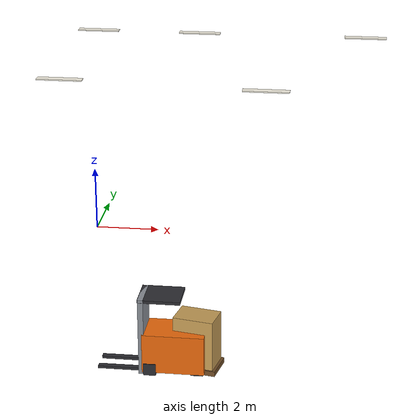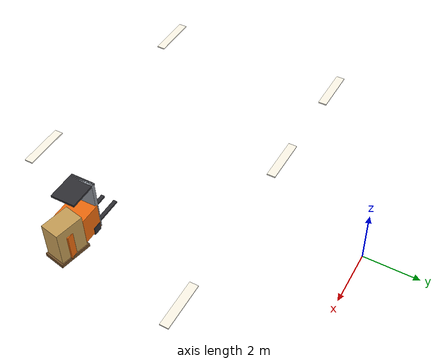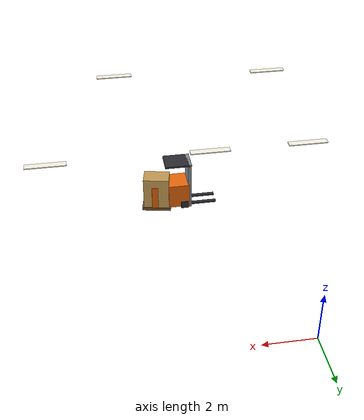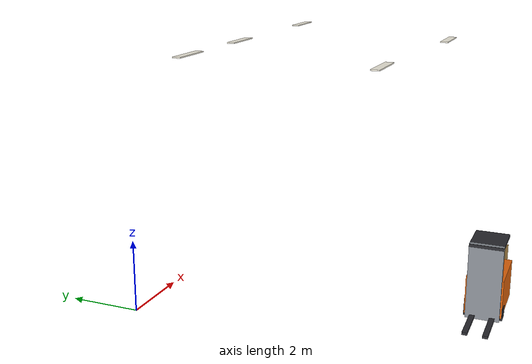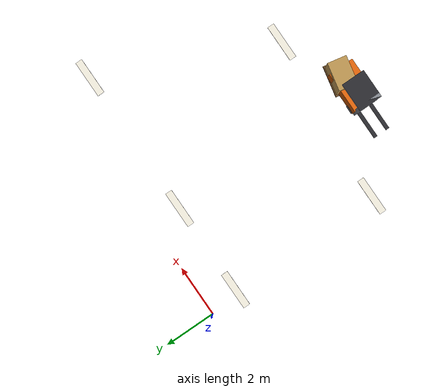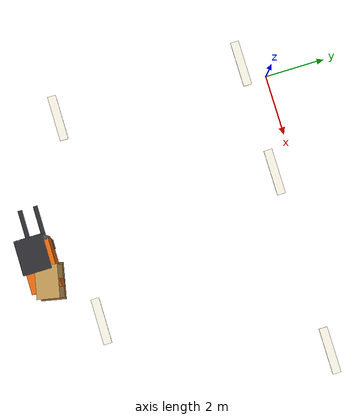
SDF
<sdf version="1.8">
 <world name="warehouse_v2">
  <model name="lamp_glow_6">
   <static>true</static>
   <pose>0.62 -6.50 6.97 0 0 0</pose>
   <link name="link">
    <visual name="visual">
     <geometry><box><size>1.20 0.22 0.03</size></box></geometry>
     <material>
      <ambient>1 0.98 0.92 1</ambient>
      <diffuse>1 0.98 0.92 1</diffuse>
      <specular>0.2 0.2 0.2 1</specular>
      <emissive>1 0.97 0.90 1</emissive>
     </material>
     <cast_shadows>false</cast_shadows>
    </visual>
   </link>
  </model>
  <model name="lamp_glow_7">
   <static>true</static>
   <pose>0.62 -1.50 6.97 0 0 0</pose>
   <link name="link">
    <visual name="visual">
     <geometry><box><size>1.20 0.22 0.03</size></box></geometry>
     <material>
      <ambient>1 0.98 0.92 1</ambient>
      <diffuse>1 0.98 0.92 1</diffuse>
      <specular>0.2 0.2 0.2 1</specular>
      <emissive>1 0.97 0.90 1</emissive>
     </material>
     <cast_shadows>false</cast_shadows>
    </visual>
   </link>
  </model>
  <model name="lamp_glow_10">
   <static>true</static>
   <pose>3.60 -1.50 6.97 0 0 0</pose>
   <link name="link">
    <visual name="visual">
     <geometry><box><size>1.20 0.22 0.03</size></box></geometry>
     <material>
      <ambient>1 0.98 0.92 1</ambient>
      <diffuse>1 0.98 0.92 1</diffuse>
      <specular>0.2 0.2 0.2 1</specular>
      <emissive>1 0.97 0.90 1</emissive>
     </material>
     <cast_shadows>false</cast_shadows>
    </visual>
   </link>
  </model>
  <model name="lamp_glow_11">
   <static>true</static>
   <pose>8.40 -1.50 6.97 0 0 0</pose>
   <link name="link">
    <visual name="visual">
     <geometry><box><size>1.20 0.22 0.03</size></box></geometry>
     <material>
      <ambient>1 0.98 0.92 1</ambient>
      <diffuse>1 0.98 0.92 1</diffuse>
      <specular>0.2 0.2 0.2 1</specular>
      <emissive>1 0.97 0.90 1</emissive>
     </material>
     <cast_shadows>false</cast_shadows>
    </visual>
   </link>
  </model>
  <model name="lamp_glow_15">
   <static>true</static>
   <pose>6.00 -6.90 6.97 0 0 0</pose>
   <link name="link">
    <visual name="visual">
     <geometry><box><size>1.20 0.22 0.03</size></box></geometry>
     <material>
      <ambient>1 0.98 0.92 1</ambient>
      <diffuse>1 0.98 0.92 1</diffuse>
      <specular>0.2 0.2 0.2 1</specular>
      <emissive>1 0.97 0.90 1</emissive>
     </material>
     <cast_shadows>false</cast_shadows>
    </visual>
   </link>
  </model>
  <include>
   <name>forklift_parked</name>
   <uri>model://dyn_forklift</uri>
   <static>true</static>
   <pose>3.600 -8.750 0.000 0 0 3.1416</pose>
  </include>
  <include>
   <name>pallet_loose_2</name>
   <uri>model://dyn_pallet_box</uri>
   <static>true</static>
   <pose>4.450 -8.630 0.000 0 0 -0.2000</pose>
  </include>
  <model name="ground_plane">
   <static>true</static>
   <link name="link">
    <collision name="collision">
     <geometry><plane><normal>0 0 1</normal><size>24.5 20.5</size></plane></geometry>
    </collision>
   </link>
  </model>
  <include>
   <name>external_camera_e</name>
   <uri>model://external_camera_e</uri>
   <pose>11.450 -9.450 5.000 0 0.7330 2.3038</pose>
  </include>
 </world>
</sdf>
